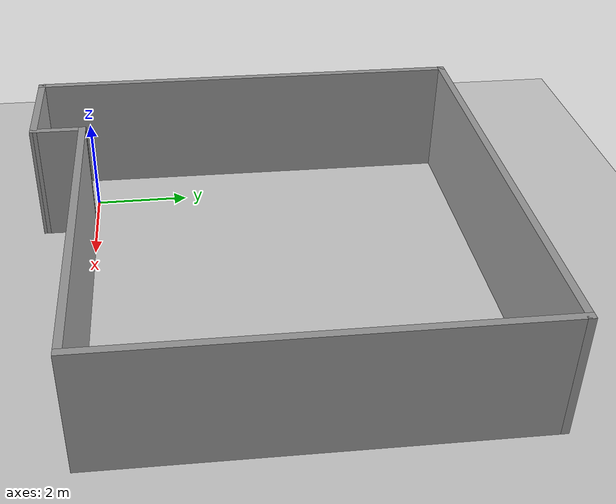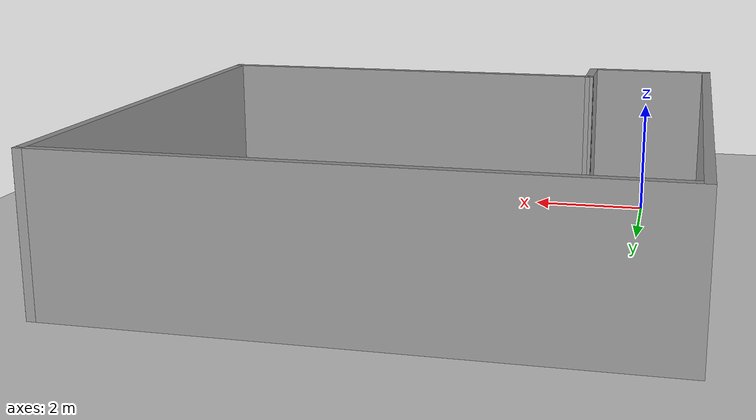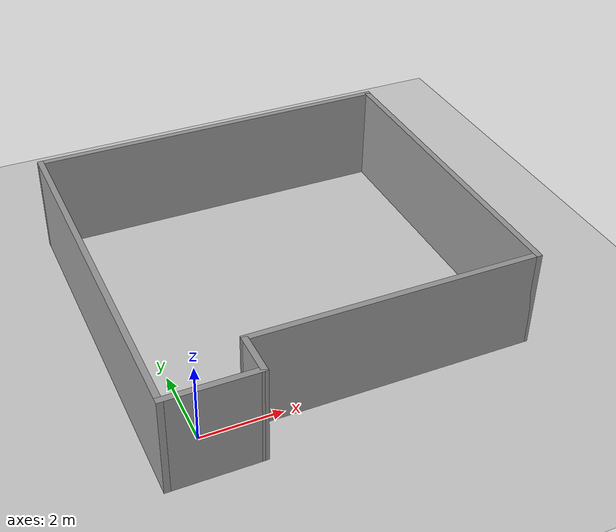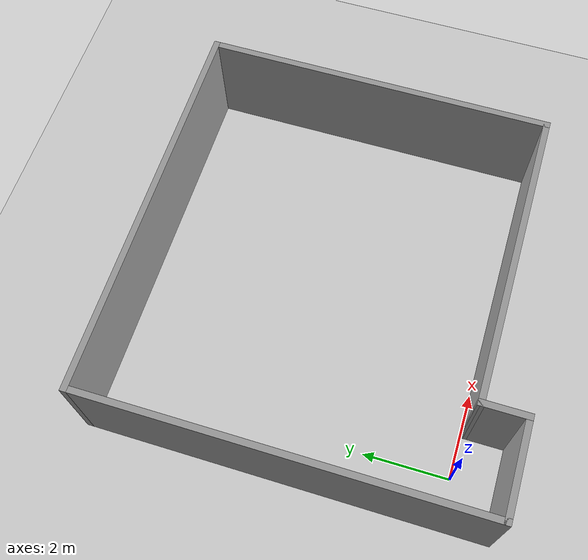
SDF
<sdf version="1.6">
 <world name="default">
  <light name="sun" type="directional">
   <pose>0 0 10 0 -0 0</pose>
   <diffuse>0.8 0.8 0.8 1</diffuse>
   <specular>0.1 0.1 0.1 1</specular>
   <attenuation>
    <range>1000</range>
    <constant>0.9</constant>
    <linear>0.01</linear>
    <quadratic>0.001</quadratic>
   </attenuation>
   <direction>-0.5 0.5 -1</direction>
  </light>
  <model name="ground_plane">
   <static>1</static>
   <link name="link">
    <collision name="collision">
     <geometry><plane><normal>0 0 1</normal><size>100 100</size></plane></geometry>
     <surface><friction><ode><mu>100</mu><mu2>50</mu2></ode></friction></surface>
    </collision>
    <visual name="visual">
     <cast_shadows>0</cast_shadows>
     <geometry><plane><normal>0 0 1</normal><size>100 100</size></plane></geometry>
     <material>
      <script><uri>file://media/materials/scripts/gazebo.material</uri><name>Gazebo/Grey</name></script>
     </material>
    </visual>
   </link>
  </model>
  <gravity>0 0 -9.8</gravity>
  <magnetic_field>6e-06 2.3e-05 -4.2e-05</magnetic_field>
  <atmosphere type="adiabatic"/>
  <physics name="default_physics" default="0" type="ode">
   <max_step_size>0.001</max_step_size>
   <real_time_factor>1</real_time_factor>
   <real_time_update_rate>1000</real_time_update_rate>
  </physics>
  <scene><ambient>0.4 0.4 0.4 1</ambient><background>0.7 0.7 0.7 1</background><shadows>1</shadows></scene>
  <spherical_coordinates>
   <surface_model>EARTH_WGS84</surface_model>
   <latitude_deg>0</latitude_deg>
   <longitude_deg>0</longitude_deg>
   <elevation>0</elevation>
   <heading_deg>0</heading_deg>
  </spherical_coordinates>
  <model name="ortam_duvar">
   <pose>3.50001 3.49998 0 0 -0 3.1415</pose>
   <link name="Wall_10">
    <collision name="Wall_10_Collision">
     <geometry><box><size>8.3 0.15 2.5</size></box></geometry>
     <pose>0 0 1.25 0 -0 0</pose>
    </collision>
    <visual name="Wall_10_Visual">
     <pose>0 0 1.25 0 -0 0</pose>
     <geometry><box><size>8.3 0.15 2.5</size></box></geometry>
     <material>
      <script><uri>file://media/materials/scripts/gazebo.material</uri><name>Gazebo/Grey</name></script>
      <ambient>1 1 1 1</ambient>
     </material>
    </visual>
    <pose>-4.57484 -0.500083 0 0 -0 1.5708</pose>
   </link>
   <link name="Wall_12">
    <collision name="Wall_12_Collision">
     <geometry><box><size>7.15 0.15 2.5</size></box></geometry>
     <pose>0 0 1.25 0 -0 0</pose>
    </collision>
    <visual name="Wall_12_Visual">
     <pose>0 0 1.25 0 -0 0</pose>
     <geometry><box><size>7.15 0.15 2.5</size></box></geometry>
     <material>
      <script><uri>file://media/materials/scripts/gazebo.material</uri><name>Gazebo/Grey</name></script>
      <ambient>1 1 1 1</ambient>
     </material>
    </visual>
    <pose>-1.07484 3.57499 0 0 -0 2.1e-05</pose>
   </link>
   <link name="Wall_14">
    <collision name="Wall_14_Collision">
     <geometry><box><size>1.15 0.15 2.5</size></box></geometry>
     <pose>0 0 1.25 0 -0 0</pose>
    </collision>
    <visual name="Wall_14_Visual">
     <pose>0 0 1.25 0 -0 0</pose>
     <geometry><box><size>1.15 0.15 2.5</size></box></geometry>
     <material>
      <script><uri>file://media/materials/scripts/gazebo.material</uri><name>Gazebo/Grey</name></script>
      <ambient>1 1 1 1</ambient>
     </material>
    </visual>
    <pose>2.425 4.07506 0 0 -0 1.57111</pose>
   </link>
   <link name="Wall_4">
    <collision name="Wall_4_Collision">
     <geometry><box><size>2.3 0.15 2.5</size></box></geometry>
     <pose>0 0 1.25 0 -0 0</pose>
    </collision>
    <visual name="Wall_4_Visual">
     <pose>0 0 1.25 0 -0 0</pose>
     <geometry><box><size>2.3 0.15 2.5</size></box></geometry>
     <material>
      <script><uri>file://media/materials/scripts/gazebo.material</uri><name>Gazebo/Grey</name></script>
      <ambient>1 1 1 1</ambient>
     </material>
    </visual>
    <pose>3.49984 4.57506 0 0 -0 3.14159</pose>
   </link>
   <link name="Wall_6">
    <collision name="Wall_6_Collision">
     <geometry><box><size>9.3 0.15 2.5</size></box></geometry>
     <pose>0 0 1.25 0 -0 0</pose>
    </collision>
    <visual name="Wall_6_Visual">
     <pose>0 0 1.25 0 -0 0</pose>
     <geometry><box><size>9.3 0.15 2.5</size></box></geometry>
     <material>
      <script><uri>file://media/materials/scripts/gazebo.material</uri><name>Gazebo/Grey</name></script>
      <ambient>1 1 1 1</ambient>
     </material>
    </visual>
    <pose>4.57484 6.1e-05 0 0 0 -1.5708</pose>
   </link>
   <link name="Wall_8">
    <collision name="Wall_8_Collision">
     <geometry><box><size>9.3 0.15 2.5</size></box></geometry>
     <pose>0 0 1.25 0 -0 0</pose>
    </collision>
    <visual name="Wall_8_Visual">
     <pose>0 0 1.25 0 -0 0</pose>
     <geometry><box><size>9.3 0.15 2.5</size></box></geometry>
     <material>
      <script><uri>file://media/materials/scripts/gazebo.material</uri><name>Gazebo/Grey</name></script>
      <ambient>1 1 1 1</ambient>
     </material>
    </visual>
    <pose>0 -4.57501 0 0 0 -3.14158</pose>
   </link>
   <static>1</static>
  </model>
 </world>
</sdf>
